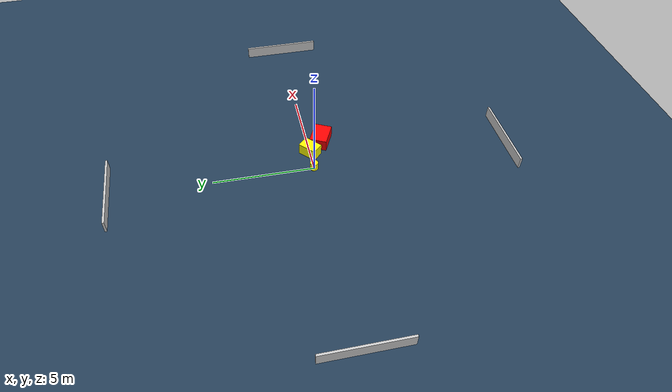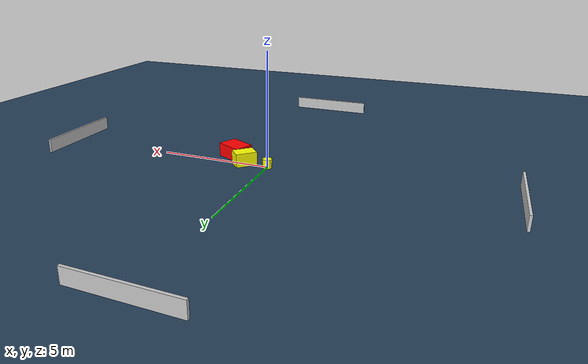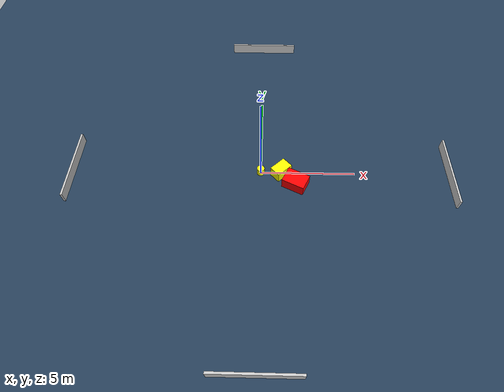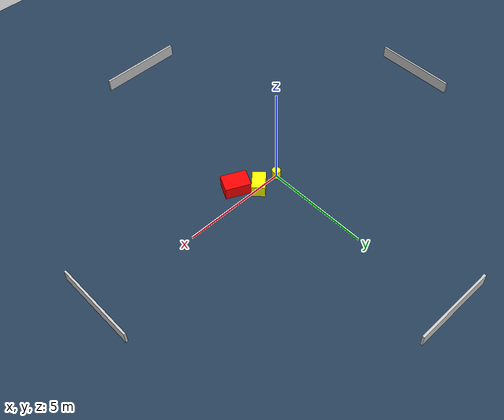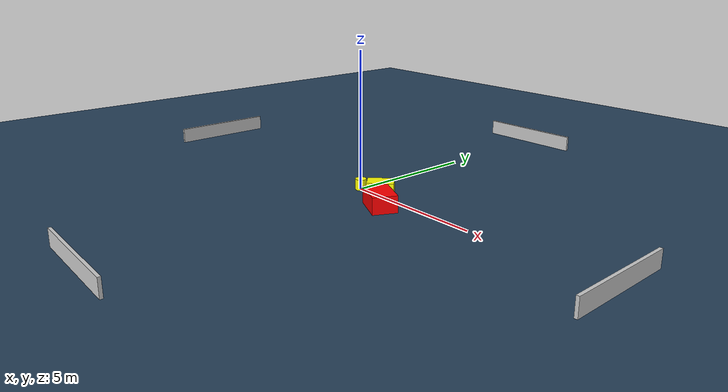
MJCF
<?xml version="1.0" ?>
<mujoco model="generated_environment">
  <option timestep="0.01" integrator="RK4" cone="elliptic"/>
  <default>
    <geom density="1"/>
  </default>
  <asset>
    <texture builtin="gradient" height="3072" name="skybox" rgb1="0.3 0.5 0.7" rgb2="0 0 0" type="skybox" width="512"/>
    <texture builtin="checker" height="300" name="groundplane" rgb1="0.2 0.3 0.4" rgb2="0.1 0.2 0.3" type="2d" width="300"/>
    <material name="groundplane" reflectance="0.2" texrepeat="5 5" texture="groundplane"/>
  </asset>
  <worldbody>
    <light dir="0 0 -1" directional="true" pos="0 0 1.5"/>
    <geom condim="3" friction="0.5 0.005 0.001" material="groundplane" name="floor" pos="0 0 0" size="0 0 0.05" type="plane"/>
    <body name="walls">
      <geom name="wall_1" condim="4" pos="-10.0 0.0 0.3" rgba="0.800000011920929 0.800000011920929 0.800000011920929 1.0" size="0.05 2.0 0.3" type="box"/>
      <geom name="wall_2" condim="4" pos="10.0 0.0 0.3" rgba="0.800000011920929 0.800000011920929 0.800000011920929 1.0" size="0.05 2.0 0.3" type="box"/>
      <geom name="wall_3" condim="4" pos="0.0 -10.0 0.3" rgba="0.800000011920929 0.800000011920929 0.800000011920929 1.0" size="2.0 0.05 0.3" type="box"/>
      <geom name="wall_4" condim="4" pos="0.0 10.0 0.3" rgba="0.800000011920929 0.800000011920929 0.800000011920929 1.0" size="2.0 0.05 0.3" type="box"/>
    </body>
    <body name="robot">
      <joint name="joint_x" type="slide" pos="0 0 0" axis="1 0 0"/>
      <joint name="joint_y" type="slide" pos="0 0 0" axis="0 1 0"/>
      <geom name="robot" type="cylinder" pos="0.0 0.0 0.2" size="0.2 0.2 0.0" mass="5.0" friction="1.0 0.005 0.0001" condim="4" rgba="1.0 1.0 0.0 1.0"/>
    </body>
    <body name="obstacle_1_movable">
      <geom name="obstacle_1_movable" condim="4" pos="1.07584669383737 -0.016753500111366747 0.3" euler="0 0 223.29519026936717" friction="0.0 0.005 0.001" rgba="1.0 1.0 0.0 1.0" size="0.4712359199846745 0.31355689456060776 0.3" type="box" mass="0.1"/>
      <joint type="free"/>
    </body>
    <body name="obstacle_2_static">
      <geom name="obstacle_2_static" condim="4" pos="1.8331846449024292 -0.7189693873928358 0.3" euler="0 0 334.0944895202469" friction="0.0 0.005 0.001" rgba="1.0 0.0 0.0 1.0" size="0.6009084443547859 0.43602410357970534 0.3" type="box"/>
    </body>
  </worldbody>
  <actuator>
    <motor name="actuator_x" joint="joint_x" gear="1" ctrlrange="-1 1"/>
    <motor name="actuator_y" joint="joint_y" gear="1" ctrlrange="-1 1"/>
  </actuator>
</mujoco>
